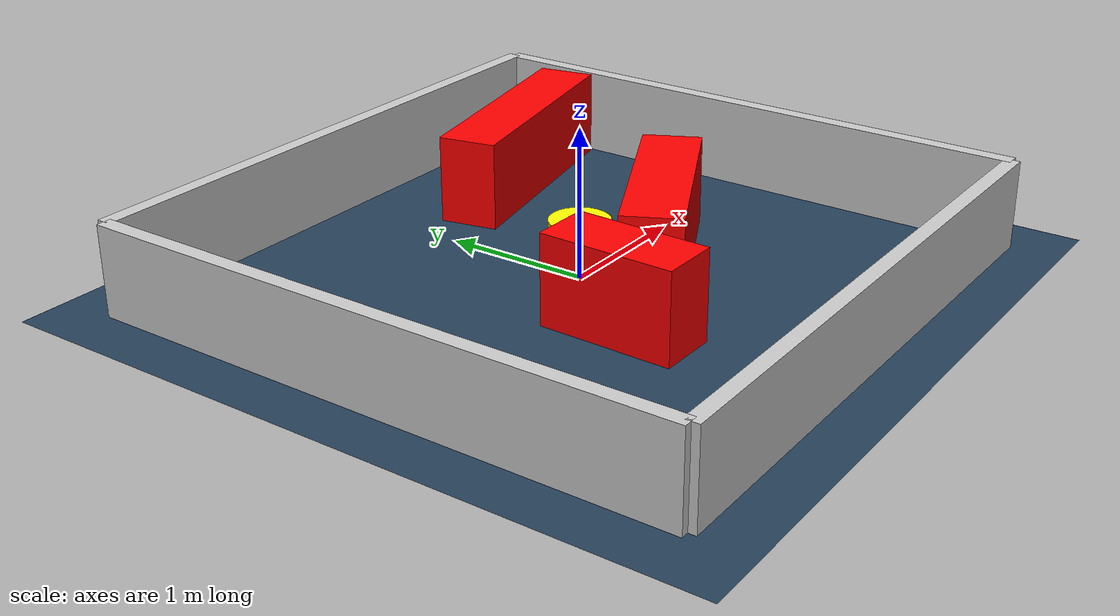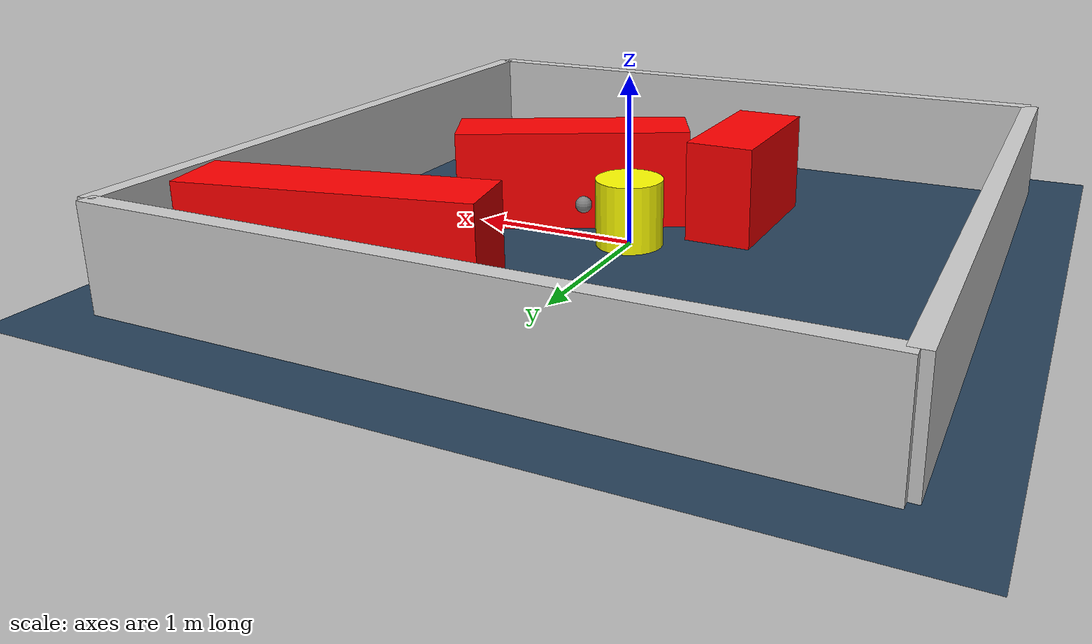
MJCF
<?xml version="1.0" ?>
<mujoco model="generated_environment">
  <option timestep="0.01" integrator="RK4" cone="elliptic"/>
  <default>
    <geom density="1"/>
  </default>
  <asset>
    <texture builtin="gradient" height="3072" rgb1="0.3 0.5 0.7" rgb2="0 0 0" type="skybox" width="512"/>
    <texture builtin="checker" height="300" mark="edge" markrgb="0.8 0.8 0.8" name="groundplane" rgb1="0.2 0.3 0.4" rgb2="0.1 0.2 0.3" type="2d" width="300"/>
    <material name="groundplane" reflectance="0.2" texrepeat="5 5" texture="groundplane" texuniform="true"/>
    <material name="robot" rgba="0.0 1.0 0.0 1"/>
  </asset>
  <worldbody>
    <light dir="0 0 -1" directional="true" pos="0 0 1.5"/>
    <geom condim="4" friction="1.0 0.005 0.001" material="groundplane" name="floor" size="0 0 0.05" type="plane"/>
    <body name="walls">
      <geom name="wall_1" condim="4" pos="-2.0 0.0 0.3" rgba="0.800000011920929 0.800000011920929 0.800000011920929 1.0" size="0.05 2.0 0.3" type="box"/>
      <geom name="wall_2" condim="4" pos="2.0 0.0 0.3" rgba="0.800000011920929 0.800000011920929 0.800000011920929 1.0" size="0.05 2.0 0.3" type="box"/>
      <geom name="wall_3" condim="4" pos="0.0 -2.0 0.3" rgba="0.800000011920929 0.800000011920929 0.800000011920929 1.0" size="2.0 0.05 0.3" type="box"/>
      <geom name="wall_4" condim="4" pos="0.0 2.0 0.3" rgba="0.800000011920929 0.800000011920929 0.800000011920929 1.0" size="2.0 0.05 0.3" type="box"/>
    </body>
    <body name="robot">
      <joint name="joint_x" type="slide" pos="0 0 0" axis="1 0 0"/>
      <joint name="joint_y" type="slide" pos="0 0 0" axis="0 1 0"/>
      <geom name="robot" type="sphere" pos="0.3 0.0 0.2" size="0.05" mass="5." friction="1.0 0.005 0.0001" condim="4" rgba="0.5 0.5 0.5 1.0"/>
      <site name="sensor_ball"/>
    </body>
    <body name="obstacle_movable_1">
      <geom name="obstacle_movable_1" condim="4" pos="0.0 0.0 0.2" euler="0 0 0.0" friction="1.0 0.005 0.001" rgba="1.0 1.0 0.0 1.0" size="0.2 0.2 0.0" type="cylinder" mass="0.1"/>
      <joint type="free"/>
    </body>
    <body name="obstacle_2_static">
      <geom name="obstacle_2_static" condim="4" pos="-0.4843711640124644 -0.6401229383266687 0.3" euler="0 0 88.8937253484719" friction="1.0 0.005 0.001" rgba="1 0 0 1" size="0.45167571573057297 0.2 0.3" type="box"/>
    </body>
    <body name="obstacle_3_static">
      <geom name="obstacle_3_static" condim="4" pos="1.0742288677958918 1.26352578749954 0.3" euler="0 0 191.45880145513482" friction="1.0 0.005 0.001" rgba="1 0 0 1" size="0.8249602363876987 0.2 0.3" type="box"/>
    </body>
    <body name="obstacle_4_static">
      <geom name="obstacle_4_static" condim="4" pos="0.5083939485521891 -0.2805379307725948 0.3" euler="0 0 206.68433349366737" friction="1.0 0.005 0.001" rgba="1 0 0 1" size="0.7043648685393498 0.2 0.3" type="box"/>
    </body>
  </worldbody>
  <actuator>
    <motor name="actuator_x" joint="joint_x" gear="1" ctrlrange="-1 1"/>
    <motor name="actuator_y" joint="joint_y" gear="1" ctrlrange="-1 1"/>
  </actuator>
</mujoco>
